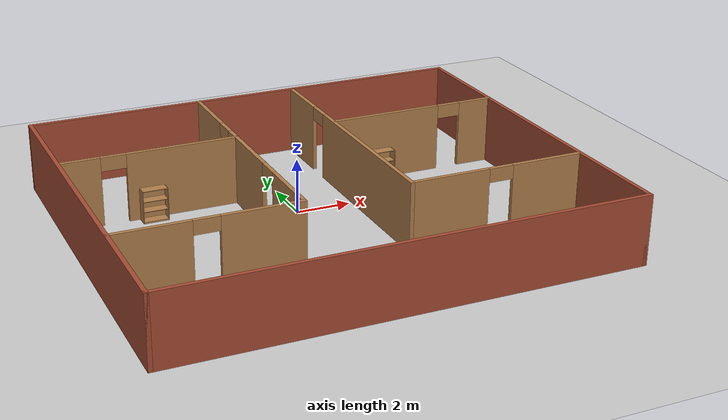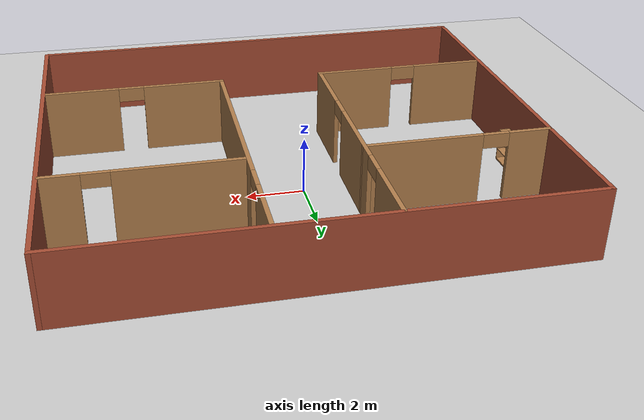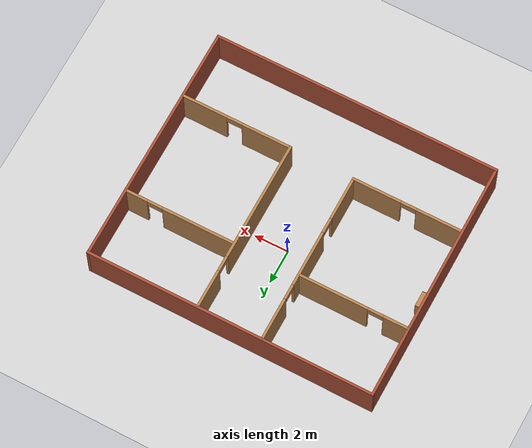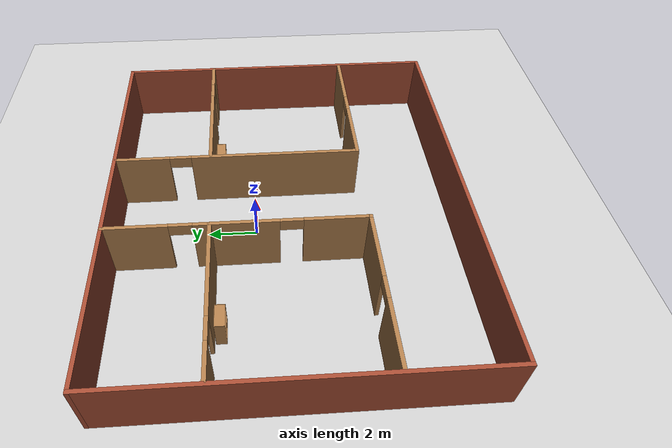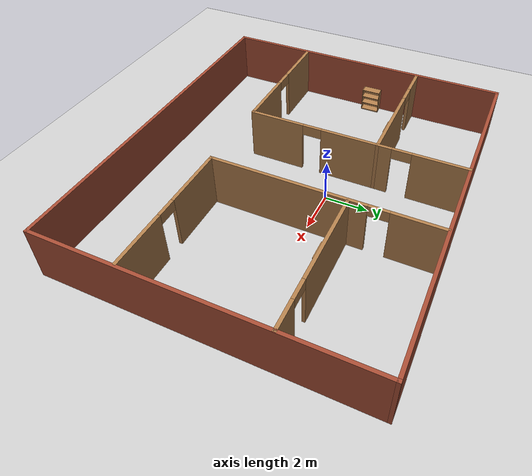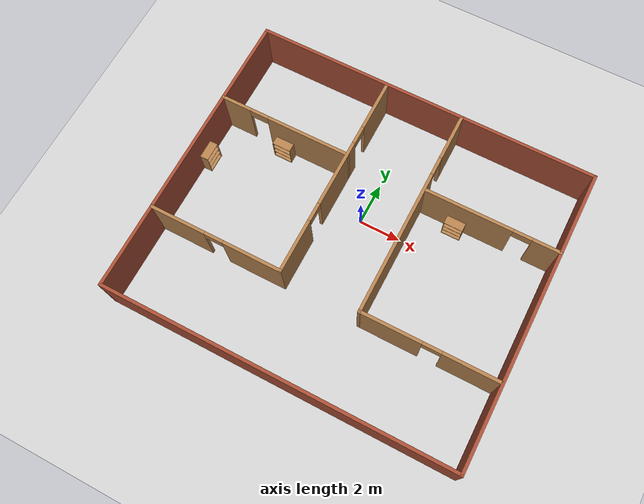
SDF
<sdf version="1.7">
 <world name="default">
  <light name="sun" type="directional">
   <pose>0 0 10 0 -0 0</pose>
   <diffuse>0.8 0.8 0.8 1</diffuse>
   <specular>0.2 0.2 0.2 1</specular>
   <attenuation>
    <range>1000</range>
    <constant>0.9</constant>
    <linear>0.01</linear>
    <quadratic>0.001</quadratic>
   </attenuation>
   <direction>-0.5 0.1 -0.9</direction>
   <spot><inner_angle>0</inner_angle><outer_angle>0</outer_angle><falloff>0</falloff></spot>
  </light>
  <model name="ground_plane">
   <static>1</static>
   <link name="link">
    <collision name="collision">
     <geometry><plane><normal>0 0 1</normal><size>100 100</size></plane></geometry>
     <surface><friction><ode><mu>100</mu><mu2>50</mu2></ode></friction></surface>
    </collision>
    <visual name="visual">
     <cast_shadows>0</cast_shadows>
     <geometry><plane><normal>0 0 1</normal><size>100 100</size></plane></geometry>
     <material>
      <script><uri>file://media/materials/scripts/gazebo.material</uri><name>Gazebo/Grey</name></script>
     </material>
    </visual>
   </link>
  </model>
  <gravity>0 0 -9.8</gravity>
  <magnetic_field>6e-06 2.3e-05 -4.2e-05</magnetic_field>
  <atmosphere type="adiabatic"/>
  <physics type="ode">
   <max_step_size>0.001</max_step_size>
   <real_time_factor>1</real_time_factor>
   <real_time_update_rate>1000</real_time_update_rate>
  </physics>
  <scene><ambient>0.4 0.4 0.4 1</ambient><background>0.7 0.7 0.7 1</background><shadows>1</shadows></scene>
  <audio><device>default</device></audio>
  <spherical_coordinates>
   <surface_model>EARTH_WGS84</surface_model>
   <latitude_deg>0</latitude_deg>
   <longitude_deg>0</longitude_deg>
   <elevation>0</elevation>
   <heading_deg>0</heading_deg>
  </spherical_coordinates>
  <model name="floor_test">
   <pose>0.339925 -1.2908 0 0 -0 0</pose>
   <link name="Wall_0">
    <collision name="Wall_0_Collision">
     <geometry><box><size>14.25 0.15 2.5</size></box></geometry>
     <pose>0 0 1.25 0 -0 0</pose>
    </collision>
    <visual name="Wall_0_Visual">
     <pose>0 0 1.25 0 -0 0</pose>
     <geometry><box><size>14.25 0.15 2.5</size></box></geometry>
     <material>
      <script><uri>file://media/materials/scripts/gazebo.material</uri><name>Gazebo/Bricks</name></script>
      <ambient>1 1 1 1</ambient>
     </material>
     <meta><layer>0</layer></meta>
    </visual>
    <pose>-8.3 -0 0 0 -0 -1.5708</pose>
   </link>
   <link name="Wall_12">
    <pose>-1.91837 1.96895 0 0 -0 1.5708</pose>
    <visual name="Wall_12_Visual_0">
     <pose>-3.81265 0 1.25 0 -0 0</pose>
     <geometry><box><size>2.6247 0.15 2.5</size></box></geometry>
     <material>
      <script><uri>file://media/materials/scripts/gazebo.material</uri><name>Gazebo/Wood</name></script>
      <ambient>1 1 1 1</ambient>
     </material>
     <meta><layer>0</layer></meta>
    </visual>
    <collision name="Wall_12_Collision_0">
     <geometry><box><size>2.6247 0.15 2.5</size></box></geometry>
     <pose>-3.81265 0 1.25 0 -0 0</pose>
    </collision>
    <visual name="Wall_12_Visual_1">
     <pose>0.045891 0 1.25 0 -0 0</pose>
     <geometry><box><size>3.29239 0.15 2.5</size></box></geometry>
     <material>
      <script><uri>file://media/materials/scripts/gazebo.material</uri><name>Gazebo/Wood</name></script>
      <ambient>1 1 1 1</ambient>
     </material>
     <meta><layer>0</layer></meta>
    </visual>
    <collision name="Wall_12_Collision_1">
     <geometry><box><size>3.29239 0.15 2.5</size></box></geometry>
     <pose>0.045891 0 1.25 0 -0 0</pose>
    </collision>
    <visual name="Wall_12_Visual_2">
     <pose>3.85854 0 1.25 0 -0 0</pose>
     <geometry><box><size>2.53291 0.15 2.5</size></box></geometry>
     <material>
      <script><uri>file://media/materials/scripts/gazebo.material</uri><name>Gazebo/Wood</name></script>
      <ambient>1 1 1 1</ambient>
     </material>
     <meta><layer>0</layer></meta>
    </visual>
    <collision name="Wall_12_Collision_2">
     <geometry><box><size>2.53291 0.15 2.5</size></box></geometry>
     <pose>3.85854 0 1.25 0 -0 0</pose>
    </collision>
    <visual name="Wall_12_Visual_3">
     <pose>-2.0503 0 2.25 0 -0 0</pose>
     <geometry><box><size>0.9 0.15 0.5</size></box></geometry>
     <material>
      <script><uri>file://media/materials/scripts/gazebo.material</uri><name>Gazebo/Wood</name></script>
      <ambient>1 1 1 1</ambient>
     </material>
     <meta><layer>0</layer></meta>
    </visual>
    <collision name="Wall_12_Collision_3">
     <geometry><box><size>0.9 0.15 0.5</size></box></geometry>
     <pose>-2.0503 0 2.25 0 -0 0</pose>
    </collision>
    <visual name="Wall_12_Visual_4">
     <pose>2.14209 0 2.25 0 -0 0</pose>
     <geometry><box><size>0.9 0.15 0.5</size></box></geometry>
     <material>
      <script><uri>file://media/materials/scripts/gazebo.material</uri><name>Gazebo/Wood</name></script>
      <ambient>1 1 1 1</ambient>
     </material>
     <meta><layer>0</layer></meta>
    </visual>
    <collision name="Wall_12_Collision_4">
     <geometry><box><size>0.9 0.15 0.5</size></box></geometry>
     <pose>2.14209 0 2.25 0 -0 0</pose>
    </collision>
   </link>
   <link name="Wall_19">
    <pose>1.84747 1.93399 0 0 -0 -1.5708</pose>
    <visual name="Wall_19_Visual_0">
     <pose>-3.98156 0 1.25 0 -0 0</pose>
     <geometry><box><size>2.28688 0.15 2.5</size></box></geometry>
     <material>
      <script><uri>file://media/materials/scripts/gazebo.material</uri><name>Gazebo/Wood</name></script>
      <ambient>1 1 1 1</ambient>
     </material>
     <meta><layer>0</layer></meta>
    </visual>
    <collision name="Wall_19_Collision_0">
     <geometry><box><size>2.28688 0.15 2.5</size></box></geometry>
     <pose>-3.98156 0 1.25 0 -0 0</pose>
    </collision>
    <visual name="Wall_19_Visual_1">
     <pose>1.59344 0 1.25 0 -0 0</pose>
     <geometry><box><size>7.06312 0.15 2.5</size></box></geometry>
     <material>
      <script><uri>file://media/materials/scripts/gazebo.material</uri><name>Gazebo/Wood</name></script>
      <ambient>1 1 1 1</ambient>
     </material>
     <meta><layer>0</layer></meta>
    </visual>
    <collision name="Wall_19_Collision_1">
     <geometry><box><size>7.06312 0.15 2.5</size></box></geometry>
     <pose>1.59344 0 1.25 0 -0 0</pose>
    </collision>
    <visual name="Wall_19_Visual_2">
     <pose>-2.38812 0 2.25 0 -0 0</pose>
     <geometry><box><size>0.9 0.15 0.5</size></box></geometry>
     <material>
      <script><uri>file://media/materials/scripts/gazebo.material</uri><name>Gazebo/Wood</name></script>
      <ambient>1 1 1 1</ambient>
     </material>
     <meta><layer>0</layer></meta>
    </visual>
    <collision name="Wall_19_Collision_2">
     <geometry><box><size>0.9 0.15 0.5</size></box></geometry>
     <pose>-2.38812 0 2.25 0 -0 0</pose>
    </collision>
   </link>
   <link name="Wall_2">
    <collision name="Wall_2_Collision">
     <geometry><box><size>16.75 0.15 2.5</size></box></geometry>
     <pose>0 0 1.25 0 -0 0</pose>
    </collision>
    <visual name="Wall_2_Visual">
     <pose>0 0 1.25 0 -0 0</pose>
     <geometry><box><size>16.75 0.15 2.5</size></box></geometry>
     <material>
      <script><uri>file://media/materials/scripts/gazebo.material</uri><name>Gazebo/Bricks</name></script>
      <ambient>1 1 1 1</ambient>
     </material>
     <meta><layer>0</layer></meta>
    </visual>
    <pose>-0 -7.05 0 0 -0 0</pose>
   </link>
   <link name="Wall_20">
    <pose>5.02247 -3.11601 0 0 -0 0</pose>
    <visual name="Wall_20_Visual_0">
     <pose>-1.77687 0 1.25 0 -0 0</pose>
     <geometry><box><size>2.94625 0.15 2.5</size></box></geometry>
     <material>
      <script><uri>file://media/materials/scripts/gazebo.material</uri><name>Gazebo/Wood</name></script>
      <ambient>1 1 1 1</ambient>
     </material>
     <meta><layer>0</layer></meta>
    </visual>
    <collision name="Wall_20_Collision_0">
     <geometry><box><size>2.94625 0.15 2.5</size></box></geometry>
     <pose>-1.77687 0 1.25 0 -0 0</pose>
    </collision>
    <visual name="Wall_20_Visual_1">
     <pose>1.92313 0 1.25 0 -0 0</pose>
     <geometry><box><size>2.65375 0.15 2.5</size></box></geometry>
     <material>
      <script><uri>file://media/materials/scripts/gazebo.material</uri><name>Gazebo/Wood</name></script>
      <ambient>1 1 1 1</ambient>
     </material>
     <meta><layer>0</layer></meta>
    </visual>
    <collision name="Wall_20_Collision_1">
     <geometry><box><size>2.65375 0.15 2.5</size></box></geometry>
     <pose>1.92313 0 1.25 0 -0 0</pose>
    </collision>
    <visual name="Wall_20_Visual_2">
     <pose>0.146254 0 2.25 0 -0 0</pose>
     <geometry><box><size>0.9 0.15 0.5</size></box></geometry>
     <material>
      <script><uri>file://media/materials/scripts/gazebo.material</uri><name>Gazebo/Wood</name></script>
      <ambient>1 1 1 1</ambient>
     </material>
     <meta><layer>0</layer></meta>
    </visual>
    <collision name="Wall_20_Collision_2">
     <geometry><box><size>0.9 0.15 0.5</size></box></geometry>
     <pose>0.146254 0 2.25 0 -0 0</pose>
    </collision>
   </link>
   <link name="Wall_22">
    <pose>5.10227 3.07376 0 0 -0 0</pose>
    <visual name="Wall_22_Visual_0">
     <pose>-1.13079 0 1.25 0 -0 0</pose>
     <geometry><box><size>4.23843 0.15 2.5</size></box></geometry>
     <material>
      <script><uri>file://media/materials/scripts/gazebo.material</uri><name>Gazebo/Wood</name></script>
      <ambient>1 1 1 1</ambient>
     </material>
     <meta><layer>0</layer></meta>
    </visual>
    <collision name="Wall_22_Collision_0">
     <geometry><box><size>4.23843 0.15 2.5</size></box></geometry>
     <pose>-1.13079 0 1.25 0 -0 0</pose>
    </collision>
    <visual name="Wall_22_Visual_1">
     <pose>2.56921 0 1.25 0 -0 0</pose>
     <geometry><box><size>1.36157 0.15 2.5</size></box></geometry>
     <material>
      <script><uri>file://media/materials/scripts/gazebo.material</uri><name>Gazebo/Wood</name></script>
      <ambient>1 1 1 1</ambient>
     </material>
     <meta><layer>0</layer></meta>
    </visual>
    <collision name="Wall_22_Collision_1">
     <geometry><box><size>1.36157 0.15 2.5</size></box></geometry>
     <pose>2.56921 0 1.25 0 -0 0</pose>
    </collision>
    <visual name="Wall_22_Visual_2">
     <pose>1.43843 0 2.25 0 -0 0</pose>
     <geometry><box><size>0.9 0.15 0.5</size></box></geometry>
     <material>
      <script><uri>file://media/materials/scripts/gazebo.material</uri><name>Gazebo/Wood</name></script>
      <ambient>1 1 1 1</ambient>
     </material>
     <meta><layer>0</layer></meta>
    </visual>
    <collision name="Wall_22_Collision_2">
     <geometry><box><size>0.9 0.15 0.5</size></box></geometry>
     <pose>1.43843 0 2.25 0 -0 0</pose>
    </collision>
   </link>
   <link name="Wall_3">
    <collision name="Wall_3_Collision">
     <geometry><box><size>14.25 0.15 2.5</size></box></geometry>
     <pose>0 0 1.25 0 -0 0</pose>
    </collision>
    <visual name="Wall_3_Visual">
     <pose>0 0 1.25 0 -0 0</pose>
     <geometry><box><size>14.25 0.15 2.5</size></box></geometry>
     <material>
      <script><uri>file://media/materials/scripts/gazebo.material</uri><name>Gazebo/Bricks</name></script>
      <ambient>1 1 1 1</ambient>
     </material>
     <meta><layer>0</layer></meta>
    </visual>
    <pose>8.3 -0 0 0 -0 1.5708</pose>
   </link>
   <link name="Wall_4">
    <collision name="Wall_4_Collision">
     <geometry><box><size>16.75 0.15 2.5</size></box></geometry>
     <pose>0 0 1.25 0 -0 0</pose>
    </collision>
    <visual name="Wall_4_Visual">
     <pose>0 0 1.25 0 -0 0</pose>
     <geometry><box><size>16.75 0.15 2.5</size></box></geometry>
     <material>
      <script><uri>file://media/materials/scripts/gazebo.material</uri><name>Gazebo/Bricks</name></script>
      <ambient>1 1 1 1</ambient>
     </material>
     <meta><layer>0</layer></meta>
    </visual>
    <pose>-0 7.05 0 0 -0 3.14159</pose>
   </link>
   <link name="Wall_6">
    <pose>-5.09337 3.01895 0 0 -0 0</pose>
    <visual name="Wall_6_Visual_0">
     <pose>-2.50031 0 1.25 0 -0 0</pose>
     <geometry><box><size>1.49937 0.15 2.5</size></box></geometry>
     <material>
      <script><uri>file://media/materials/scripts/gazebo.material</uri><name>Gazebo/Wood</name></script>
      <ambient>1 1 1 1</ambient>
     </material>
     <meta><layer>0</layer></meta>
    </visual>
    <collision name="Wall_6_Collision_0">
     <geometry><box><size>1.49937 0.15 2.5</size></box></geometry>
     <pose>-2.50031 0 1.25 0 -0 0</pose>
    </collision>
    <visual name="Wall_6_Visual_1">
     <pose>1.19969 0 1.25 0 -0 0</pose>
     <geometry><box><size>4.10063 0.15 2.5</size></box></geometry>
     <material>
      <script><uri>file://media/materials/scripts/gazebo.material</uri><name>Gazebo/Wood</name></script>
      <ambient>1 1 1 1</ambient>
     </material>
     <meta><layer>0</layer></meta>
    </visual>
    <collision name="Wall_6_Collision_1">
     <geometry><box><size>4.10063 0.15 2.5</size></box></geometry>
     <pose>1.19969 0 1.25 0 -0 0</pose>
    </collision>
    <visual name="Wall_6_Visual_2">
     <pose>-1.30063 0 2.25 0 -0 0</pose>
     <geometry><box><size>0.9 0.15 0.5</size></box></geometry>
     <material>
      <script><uri>file://media/materials/scripts/gazebo.material</uri><name>Gazebo/Wood</name></script>
      <ambient>1 1 1 1</ambient>
     </material>
     <meta><layer>0</layer></meta>
    </visual>
    <collision name="Wall_6_Collision_2">
     <geometry><box><size>0.9 0.15 0.5</size></box></geometry>
     <pose>-1.30063 0 2.25 0 -0 0</pose>
    </collision>
   </link>
   <link name="Wall_9">
    <pose>-5.09337 -3.08105 0 0 -0 3.14159</pose>
    <visual name="Wall_9_Visual_0">
     <pose>-1.80977 0 1.25 0 -0 0</pose>
     <geometry><box><size>2.88047 0.15 2.5</size></box></geometry>
     <material>
      <script><uri>file://media/materials/scripts/gazebo.material</uri><name>Gazebo/Wood</name></script>
      <ambient>1 1 1 1</ambient>
     </material>
     <meta><layer>0</layer></meta>
    </visual>
    <collision name="Wall_9_Collision_0">
     <geometry><box><size>2.88047 0.15 2.5</size></box></geometry>
     <pose>-1.80977 0 1.25 0 -0 0</pose>
    </collision>
    <visual name="Wall_9_Visual_1">
     <pose>1.89024 0 1.25 0 -0 0</pose>
     <geometry><box><size>2.71953 0.15 2.5</size></box></geometry>
     <material>
      <script><uri>file://media/materials/scripts/gazebo.material</uri><name>Gazebo/Wood</name></script>
      <ambient>1 1 1 1</ambient>
     </material>
     <meta><layer>0</layer></meta>
    </visual>
    <collision name="Wall_9_Collision_1">
     <geometry><box><size>2.71953 0.15 2.5</size></box></geometry>
     <pose>1.89024 0 1.25 0 -0 0</pose>
    </collision>
    <visual name="Wall_9_Visual_2">
     <pose>0.08047 0 2.25 0 -0 0</pose>
     <geometry><box><size>0.9 0.15 0.5</size></box></geometry>
     <material>
      <script><uri>file://media/materials/scripts/gazebo.material</uri><name>Gazebo/Wood</name></script>
      <ambient>1 1 1 1</ambient>
     </material>
     <meta><layer>0</layer></meta>
    </visual>
    <collision name="Wall_9_Collision_2">
     <geometry><box><size>0.9 0.15 0.5</size></box></geometry>
     <pose>0.08047 0 2.25 0 -0 0</pose>
    </collision>
   </link>
   <static>1</static>
  </model>
  <model name="bookshelf">
   <static>1</static>
   <link name="link">
    <inertial><mass>1</mass></inertial>
    <collision name="back">
     <pose>0 0.005 0.6 0 -0 0</pose>
     <geometry><box><size>0.9 0.01 1.2</size></box></geometry>
    </collision>
    <visual name="visual1">
     <pose>0 0.005 0.6 0 -0 0</pose>
     <geometry><box><size>0.9 0.01 1.2</size></box></geometry>
     <material>
      <script><uri>file://media/materials/scripts/gazebo.material</uri><name>Gazebo/Wood</name></script>
     </material>
    </visual>
    <collision name="left_side">
     <pose>0.45 -0.195 0.6 0 -0 0</pose>
     <geometry><box><size>0.02 0.4 1.2</size></box></geometry>
    </collision>
    <visual name="visual2">
     <pose>0.45 -0.195 0.6 0 -0 0</pose>
     <geometry><box><size>0.02 0.4 1.2</size></box></geometry>
     <material>
      <script><uri>file://media/materials/scripts/gazebo.material</uri><name>Gazebo/Wood</name></script>
     </material>
    </visual>
    <collision name="right_side">
     <pose>-0.45 -0.195 0.6 0 -0 0</pose>
     <geometry><box><size>0.02 0.4 1.2</size></box></geometry>
    </collision>
    <visual name="visual3">
     <pose>-0.45 -0.195 0.6 0 -0 0</pose>
     <geometry><box><size>0.02 0.4 1.2</size></box></geometry>
     <material>
      <script><uri>file://media/materials/scripts/gazebo.material</uri><name>Gazebo/Wood</name></script>
     </material>
    </visual>
    <collision name="bottom">
     <pose>0 -0.195 0.03 0 -0 0</pose>
     <geometry><box><size>0.88 0.4 0.06</size></box></geometry>
    </collision>
    <visual name="visual4">
     <pose>0 -0.195 0.03 0 -0 0</pose>
     <geometry><box><size>0.88 0.4 0.06</size></box></geometry>
     <material>
      <script><uri>file://media/materials/scripts/gazebo.material</uri><name>Gazebo/Wood</name></script>
     </material>
    </visual>
    <collision name="top">
     <pose>0 -0.195 1.19 0 -0 0</pose>
     <geometry><box><size>0.88 0.4 0.02</size></box></geometry>
    </collision>
    <visual name="visual5">
     <pose>0 -0.195 1.19 0 -0 0</pose>
     <geometry><box><size>0.88 0.4 0.02</size></box></geometry>
     <material>
      <script><uri>file://media/materials/scripts/gazebo.material</uri><name>Gazebo/Wood</name></script>
     </material>
    </visual>
    <collision name="low_shelf">
     <pose>0 -0.195 0.43 0 -0 0</pose>
     <geometry><box><size>0.88 0.4 0.02</size></box></geometry>
    </collision>
    <visual name="visual6">
     <pose>0 -0.195 0.43 0 -0 0</pose>
     <geometry><box><size>0.88 0.4 0.02</size></box></geometry>
     <material>
      <script><uri>file://media/materials/scripts/gazebo.material</uri><name>Gazebo/Wood</name></script>
     </material>
    </visual>
    <collision name="high_shelf">
     <pose>0 -0.195 0.8 0 -0 0</pose>
     <geometry><box><size>0.88 0.4 0.02</size></box></geometry>
    </collision>
    <visual name="visual7">
     <pose>0 -0.195 0.8 0 -0 0</pose>
     <geometry><box><size>0.88 0.4 0.02</size></box></geometry>
     <material>
      <script><uri>file://media/materials/scripts/gazebo.material</uri><name>Gazebo/Wood</name></script>
     </material>
    </visual>
   </link>
   <pose>-4.77743 1.59824 0 0 -0 0</pose>
  </model>
  <model name="bookshelf_0">
   <static>1</static>
   <link name="link">
    <inertial><mass>1</mass></inertial>
    <collision name="back">
     <pose>0 0.005 0.6 0 -0 0</pose>
     <geometry><box><size>0.9 0.01 1.2</size></box></geometry>
    </collision>
    <visual name="visual1">
     <pose>0 0.005 0.6 0 -0 0</pose>
     <geometry><box><size>0.9 0.01 1.2</size></box></geometry>
     <material>
      <script><uri>file://media/materials/scripts/gazebo.material</uri><name>Gazebo/Wood</name></script>
     </material>
    </visual>
    <collision name="left_side">
     <pose>0.45 -0.195 0.6 0 -0 0</pose>
     <geometry><box><size>0.02 0.4 1.2</size></box></geometry>
    </collision>
    <visual name="visual2">
     <pose>0.45 -0.195 0.6 0 -0 0</pose>
     <geometry><box><size>0.02 0.4 1.2</size></box></geometry>
     <material>
      <script><uri>file://media/materials/scripts/gazebo.material</uri><name>Gazebo/Wood</name></script>
     </material>
    </visual>
    <collision name="right_side">
     <pose>-0.45 -0.195 0.6 0 -0 0</pose>
     <geometry><box><size>0.02 0.4 1.2</size></box></geometry>
    </collision>
    <visual name="visual3">
     <pose>-0.45 -0.195 0.6 0 -0 0</pose>
     <geometry><box><size>0.02 0.4 1.2</size></box></geometry>
     <material>
      <script><uri>file://media/materials/scripts/gazebo.material</uri><name>Gazebo/Wood</name></script>
     </material>
    </visual>
    <collision name="bottom">
     <pose>0 -0.195 0.03 0 -0 0</pose>
     <geometry><box><size>0.88 0.4 0.06</size></box></geometry>
    </collision>
    <visual name="visual4">
     <pose>0 -0.195 0.03 0 -0 0</pose>
     <geometry><box><size>0.88 0.4 0.06</size></box></geometry>
     <material>
      <script><uri>file://media/materials/scripts/gazebo.material</uri><name>Gazebo/Wood</name></script>
     </material>
    </visual>
    <collision name="top">
     <pose>0 -0.195 1.19 0 -0 0</pose>
     <geometry><box><size>0.88 0.4 0.02</size></box></geometry>
    </collision>
    <visual name="visual5">
     <pose>0 -0.195 1.19 0 -0 0</pose>
     <geometry><box><size>0.88 0.4 0.02</size></box></geometry>
     <material>
      <script><uri>file://media/materials/scripts/gazebo.material</uri><name>Gazebo/Wood</name></script>
     </material>
    </visual>
    <collision name="low_shelf">
     <pose>0 -0.195 0.43 0 -0 0</pose>
     <geometry><box><size>0.88 0.4 0.02</size></box></geometry>
    </collision>
    <visual name="visual6">
     <pose>0 -0.195 0.43 0 -0 0</pose>
     <geometry><box><size>0.88 0.4 0.02</size></box></geometry>
     <material>
      <script><uri>file://media/materials/scripts/gazebo.material</uri><name>Gazebo/Wood</name></script>
     </material>
    </visual>
    <collision name="high_shelf">
     <pose>0 -0.195 0.8 0 -0 0</pose>
     <geometry><box><size>0.88 0.4 0.02</size></box></geometry>
    </collision>
    <visual name="visual7">
     <pose>0 -0.195 0.8 0 -0 0</pose>
     <geometry><box><size>0.88 0.4 0.02</size></box></geometry>
     <material>
      <script><uri>file://media/materials/scripts/gazebo.material</uri><name>Gazebo/Wood</name></script>
     </material>
    </visual>
   </link>
   <pose>-7.86759 -0.470137 0 0 -0 1.57764</pose>
  </model>
  <model name="bookshelf_1">
   <static>1</static>
   <link name="link">
    <inertial><mass>1</mass></inertial>
    <collision name="back">
     <pose>0 0.005 0.6 0 -0 0</pose>
     <geometry><box><size>0.9 0.01 1.2</size></box></geometry>
    </collision>
    <visual name="visual1">
     <pose>0 0.005 0.6 0 -0 0</pose>
     <geometry><box><size>0.9 0.01 1.2</size></box></geometry>
     <material>
      <script><uri>file://media/materials/scripts/gazebo.material</uri><name>Gazebo/Wood</name></script>
     </material>
    </visual>
    <collision name="left_side">
     <pose>0.45 -0.195 0.6 0 -0 0</pose>
     <geometry><box><size>0.02 0.4 1.2</size></box></geometry>
    </collision>
    <visual name="visual2">
     <pose>0.45 -0.195 0.6 0 -0 0</pose>
     <geometry><box><size>0.02 0.4 1.2</size></box></geometry>
     <material>
      <script><uri>file://media/materials/scripts/gazebo.material</uri><name>Gazebo/Wood</name></script>
     </material>
    </visual>
    <collision name="right_side">
     <pose>-0.45 -0.195 0.6 0 -0 0</pose>
     <geometry><box><size>0.02 0.4 1.2</size></box></geometry>
    </collision>
    <visual name="visual3">
     <pose>-0.45 -0.195 0.6 0 -0 0</pose>
     <geometry><box><size>0.02 0.4 1.2</size></box></geometry>
     <material>
      <script><uri>file://media/materials/scripts/gazebo.material</uri><name>Gazebo/Wood</name></script>
     </material>
    </visual>
    <collision name="bottom">
     <pose>0 -0.195 0.03 0 -0 0</pose>
     <geometry><box><size>0.88 0.4 0.06</size></box></geometry>
    </collision>
    <visual name="visual4">
     <pose>0 -0.195 0.03 0 -0 0</pose>
     <geometry><box><size>0.88 0.4 0.06</size></box></geometry>
     <material>
      <script><uri>file://media/materials/scripts/gazebo.material</uri><name>Gazebo/Wood</name></script>
     </material>
    </visual>
    <collision name="top">
     <pose>0 -0.195 1.19 0 -0 0</pose>
     <geometry><box><size>0.88 0.4 0.02</size></box></geometry>
    </collision>
    <visual name="visual5">
     <pose>0 -0.195 1.19 0 -0 0</pose>
     <geometry><box><size>0.88 0.4 0.02</size></box></geometry>
     <material>
      <script><uri>file://media/materials/scripts/gazebo.material</uri><name>Gazebo/Wood</name></script>
     </material>
    </visual>
    <collision name="low_shelf">
     <pose>0 -0.195 0.43 0 -0 0</pose>
     <geometry><box><size>0.88 0.4 0.02</size></box></geometry>
    </collision>
    <visual name="visual6">
     <pose>0 -0.195 0.43 0 -0 0</pose>
     <geometry><box><size>0.88 0.4 0.02</size></box></geometry>
     <material>
      <script><uri>file://media/materials/scripts/gazebo.material</uri><name>Gazebo/Wood</name></script>
     </material>
    </visual>
    <collision name="high_shelf">
     <pose>0 -0.195 0.8 0 -0 0</pose>
     <geometry><box><size>0.88 0.4 0.02</size></box></geometry>
    </collision>
    <visual name="visual7">
     <pose>0 -0.195 0.8 0 -0 0</pose>
     <geometry><box><size>0.88 0.4 0.02</size></box></geometry>
     <material>
      <script><uri>file://media/materials/scripts/gazebo.material</uri><name>Gazebo/Wood</name></script>
     </material>
    </visual>
   </link>
   <pose>3.99126 1.65154 0 0 -0 0</pose>
  </model>
 </world>
</sdf>
